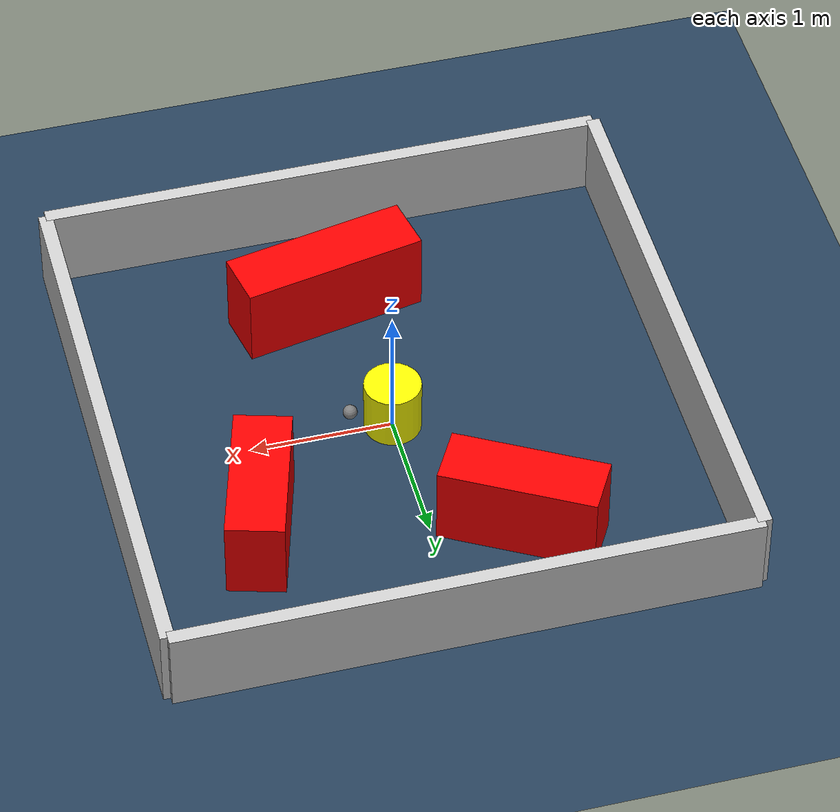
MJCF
<?xml version="1.0" ?>
<mujoco model="generated_environment">
  <option timestep="0.01" integrator="RK4" cone="elliptic"/>
  <default>
    <geom density="1"/>
  </default>
  <asset>
    <texture builtin="gradient" height="3072" rgb1="0.3 0.5 0.7" rgb2="0 0 0" type="skybox" width="512"/>
    <texture builtin="checker" height="300" mark="edge" markrgb="0.8 0.8 0.8" name="groundplane" rgb1="0.2 0.3 0.4" rgb2="0.1 0.2 0.3" type="2d" width="300"/>
    <material name="groundplane" reflectance="0.2" texrepeat="5 5" texture="groundplane" texuniform="true"/>
    <material name="robot" rgba="0.0 1.0 0.0 1"/>
  </asset>
  <worldbody>
    <light dir="0 0 -1" directional="true" pos="0 0 1.5"/>
    <geom condim="4" friction="1.0 0.005 0.001" material="groundplane" name="floor" size="0 0 0.05" type="plane"/>
    <body name="walls">
      <geom name="wall_1" condim="4" pos="-2.0 0.0 0.3" rgba="0.800000011920929 0.800000011920929 0.800000011920929 1.0" size="0.05 2.0 0.3" type="box"/>
      <geom name="wall_2" condim="4" pos="2.0 0.0 0.3" rgba="0.800000011920929 0.800000011920929 0.800000011920929 1.0" size="0.05 2.0 0.3" type="box"/>
      <geom name="wall_3" condim="4" pos="0.0 -2.0 0.3" rgba="0.800000011920929 0.800000011920929 0.800000011920929 1.0" size="2.0 0.05 0.3" type="box"/>
      <geom name="wall_4" condim="4" pos="0.0 2.0 0.3" rgba="0.800000011920929 0.800000011920929 0.800000011920929 1.0" size="2.0 0.05 0.3" type="box"/>
    </body>
    <body name="robot">
      <joint name="joint_x" type="slide" pos="0 0 0" axis="1 0 0"/>
      <joint name="joint_y" type="slide" pos="0 0 0" axis="0 1 0"/>
      <geom name="robot" type="sphere" pos="0.3 0.0 0.2" size="0.05" mass="5." friction="1.0 0.005 0.0001" condim="4" rgba="0.5 0.5 0.5 1.0"/>
      <site name="sensor_ball"/>
    </body>
    <body name="obstacle_movable_1">
      <geom name="obstacle_movable_1" condim="4" pos="0.0 0.0 0.2" euler="0 0 0.0" friction="1.0 0.005 0.001" rgba="1.0 1.0 0.0 1.0" size="0.2 0.2 0.0" type="cylinder" mass="0.1"/>
      <joint type="free"/>
    </body>
    <body name="obstacle_2_static">
      <geom name="obstacle_2_static" condim="4" pos="-0.5976830416151823 1.1682208603627215 0.3" euler="0 0 330.3873323376165" friction="1.0 0.005 0.001" rgba="1 0 0 1" size="0.5458092031493815 0.2 0.3" type="box"/>
    </body>
    <body name="obstacle_3_static">
      <geom name="obstacle_3_static" condim="4" pos="1.1086192326332376 0.7521512574542053 0.3" euler="0 0 73.67296056067207" friction="1.0 0.005 0.001" rgba="1 0 0 1" size="0.5184708951841488 0.2 0.3" type="box"/>
    </body>
    <body name="obstacle_4_static">
      <geom name="obstacle_4_static" condim="4" pos="0.1891583130398773 -1.1717377563463374 0.3" euler="0 0 11.211376580282263" friction="1.0 0.005 0.001" rgba="1 0 0 1" size="0.6566958532894307 0.2 0.3" type="box"/>
    </body>
  </worldbody>
  <actuator>
    <motor name="actuator_x" joint="joint_x" gear="1" ctrlrange="-1 1"/>
    <motor name="actuator_y" joint="joint_y" gear="1" ctrlrange="-1 1"/>
  </actuator>
</mujoco>
